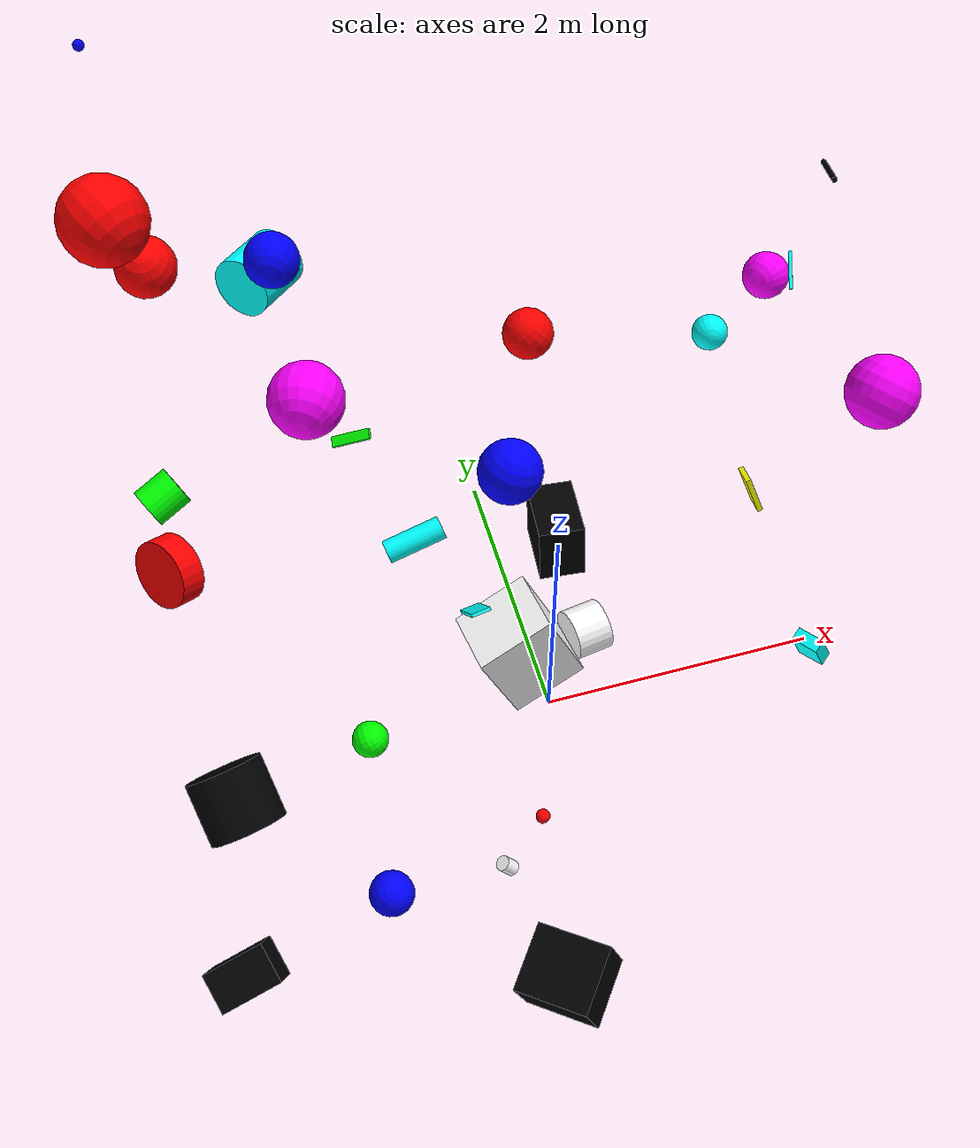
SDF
<sdf version="1.6">
 <world name="default">
  <include><uri>model://sun</uri></include>
  <model name="model_0">
   <allow_auto_disable>false</allow_auto_disable>
   <pose>0.8920310653777541
        -0.5840274105457106
        2.999799415194229
        2.2834429768708246
        2.089208011517773
        2.2327474561282576</pose>
   <link name="link">
    <inertial>
     <mass>0.004027552138453025</mass>
     <inertia>
      <ixx>7.91307599122789e-06</ixx>
      <iyy>1.6274618627189043e-05</iyy>
      <izz>2.361954240863773e-05</izz>
      <ixy>0.0</ixy>
      <ixz>0.0</ixz>
      <iyz>0.0</iyz>
     </inertia>
    </inertial>
    <collision name="collision">
     <geometry>
      <box><size>0.2182738137766651
            0.15076614891604018
            0.029092925152408668</size></box>
     </geometry>
     <surface>
      <bounce><restitution_coefficient>0</restitution_coefficient><threshold>5.0</threshold></bounce>
      <friction><ode><mu>1</mu></ode></friction>
     </surface>
    </collision>
    <visual name="visual">
     <geometry>
      <box><size>0.2182738137766651
            0.15076614891604018
            0.029092925152408668</size></box>
     </geometry>
     <material>
      <diffuse>1
              1
              0
              1</diffuse>
      <specular>1
              1
              1
              1</specular>
      <ambient>1
              0
              1
              1</ambient>
     </material>
    </visual>
   </link>
  </model>
  <model name="model_1">
   <allow_auto_disable>false</allow_auto_disable>
   <pose>-1.4550518862354467
        0.19147969491655248
        4.647626445242163
        1.3393376729164888
        1.4807817211829017
        2.553008919077728</pose>
   <link name="link">
    <inertial>
     <mass>0.02235544841956601</mass>
     <inertia>
      <ixx>0.0001604633614619541</ixx>
      <iyy>0.0001604633614619541</iyy>
      <izz>0.0001604633614619541</izz>
      <ixy>0.0</ixy>
      <ixz>0.0</ixz>
      <iyz>0.0</iyz>
     </inertia>
    </inertial>
    <collision name="collision">
     <geometry><sphere><radius>0.13395725957528468</radius></sphere></geometry>
     <surface>
      <bounce><restitution_coefficient>1</restitution_coefficient><threshold>5.0</threshold></bounce>
      <friction><ode><mu>6</mu></ode></friction>
     </surface>
    </collision>
    <visual name="visual">
     <geometry><sphere><radius>0.13395725957528468</radius></sphere></geometry>
     <material>
      <diffuse>0
              0
              1
              1</diffuse>
      <specular>1
              0
              0
              1</specular>
      <ambient>1
              0
              0
              1</ambient>
     </material>
    </visual>
   </link>
  </model>
  <model name="model_2">
   <allow_auto_disable>false</allow_auto_disable>
   <pose>-2.321813984611494
        0.06412139208453116
        2.5719793481291986
        1.1822359592798461
        2.8901904015267625
        2.0304544783209963</pose>
   <link name="link">
    <inertial>
     <mass>0.004429249819763144</mass>
     <inertia>
      <ixx>5.471176677279458e-05</ixx>
      <iyy>5.471176677279458e-05</iyy>
      <izz>9.242744719670705e-05</izz>
      <ixy>0.0</ixy>
      <ixz>0.0</ixz>
      <iyz>0.0</iyz>
     </inertia>
    </inertial>
    <collision name="collision">
     <geometry>
      <cylinder><radius>0.20429154309584932</radius><length>0.1517347318581171</length></cylinder>
     </geometry>
     <surface>
      <bounce><restitution_coefficient>1</restitution_coefficient><threshold>5.0</threshold></bounce>
      <friction><ode><mu>0</mu></ode></friction>
     </surface>
    </collision>
    <visual name="visual">
     <geometry>
      <cylinder><radius>0.20429154309584932</radius><length>0.1517347318581171</length></cylinder>
     </geometry>
     <material>
      <diffuse>1
              0
              0
              1</diffuse>
      <specular>0
              0
              0
              1</specular>
      <ambient>0
              0
              1
              1</ambient>
     </material>
    </visual>
   </link>
  </model>
  <model name="model_3">
   <allow_auto_disable>false</allow_auto_disable>
   <pose>-0.8551795804087954
        0.28181285327629
        2.0112790917625083
        2.1664095225270628
        1.9555788002384369
        2.235919422316196</pose>
   <link name="link">
    <inertial>
     <mass>0.018297608594807734</mass>
     <inertia>
      <ixx>0.0002387589444305875</ixx>
      <iyy>0.0002387589444305875</iyy>
      <izz>5.0763761305064496e-05</izz>
      <ixy>0.0</ixy>
      <ixz>0.0</ixz>
      <iyz>0.0</iyz>
     </inertia>
    </inertial>
    <collision name="collision">
     <geometry>
      <cylinder><radius>0.07448944317526346</radius><length>0.3740824412376236</length></cylinder>
     </geometry>
     <surface>
      <bounce><restitution_coefficient>0</restitution_coefficient><threshold>5.0</threshold></bounce>
      <friction><ode><mu>2</mu></ode></friction>
     </surface>
    </collision>
    <visual name="visual">
     <geometry>
      <cylinder><radius>0.07448944317526346</radius><length>0.3740824412376236</length></cylinder>
     </geometry>
     <material>
      <diffuse>0
              1
              1
              1</diffuse>
      <specular>0
              1
              0
              1</specular>
      <ambient>1
              0
              1
              1</ambient>
     </material>
    </visual>
   </link>
  </model>
  <model name="model_4">
   <allow_auto_disable>false</allow_auto_disable>
   <pose>-0.6793770007070714
        -2.423535450182006
        1.3913462665674114
        2.334858049163322
        1.2801658464876695
        0.08253686424867986</pose>
   <link name="link">
    <inertial>
     <mass>0.15040445230605445</mass>
     <inertia>
      <ixx>0.004506096678947164</ixx>
      <iyy>0.003239659933740621</iyy>
      <izz>0.0037209538760194596</izz>
      <ixy>0.0</ixy>
      <ixz>0.0</ixz>
      <iyz>0.0</iyz>
     </inertia>
    </inertial>
    <collision name="collision">
     <geometry>
      <box><size>0.3129163909929085
            0.4460483847868822
            0.4006983727361439</size></box>
     </geometry>
     <surface>
      <bounce><restitution_coefficient>0</restitution_coefficient><threshold>5.0</threshold></bounce>
      <friction><ode><mu>1</mu></ode></friction>
     </surface>
    </collision>
    <visual name="visual">
     <geometry>
      <box><size>0.3129163909929085
            0.4460483847868822
            0.4006983727361439</size></box>
     </geometry>
     <material>
      <diffuse>0
              0
              0
              1</diffuse>
      <specular>0
              1
              0
              1</specular>
      <ambient>1
              1
              0
              1</ambient>
     </material>
    </visual>
   </link>
  </model>
  <model name="model_5">
   <allow_auto_disable>false</allow_auto_disable>
   <pose>1.7395183741383233
        -0.4479138035040213
        0.7096047185828397
        2.8535891976373375
        1.1595156117539311
        0.34361685544288617</pose>
   <link name="link">
    <inertial>
     <mass>0.020352273797148757</mass>
     <inertia>
      <ixx>7.541166650226093e-05</ixx>
      <iyy>0.00019693473581305752</iyy>
      <izz>0.00024273790379311758</izz>
      <ixy>0.0</ixy>
      <ixz>0.0</ixz>
      <iyz>0.0</iyz>
     </inertia>
    </inertial>
    <collision name="collision">
     <geometry>
      <box><size>0.3276992735671293
            0.1890370987466162
            0.09342806390790545</size></box>
     </geometry>
     <surface>
      <bounce><restitution_coefficient>1</restitution_coefficient><threshold>5.0</threshold></bounce>
      <friction><ode><mu>5</mu></ode></friction>
     </surface>
    </collision>
    <visual name="visual">
     <geometry>
      <box><size>0.3276992735671293
            0.1890370987466162
            0.09342806390790545</size></box>
     </geometry>
     <material>
      <diffuse>0
              1
              1
              1</diffuse>
      <specular>1
              0
              1
              1</specular>
      <ambient>0
              0
              1
              1</ambient>
     </material>
    </visual>
   </link>
  </model>
  <model name="model_6">
   <allow_auto_disable>false</allow_auto_disable>
   <pose>-1.543818250233671
        -1.9314657371016586
        2.003802709388442
        1.3886574025692782
        2.8094082988189504
        0.20126288932390204</pose>
   <link name="link">
    <inertial>
     <mass>0.03153846903263536</mass>
     <inertia>
      <ixx>0.00019506345332151554</ixx>
      <iyy>0.00019506345332151554</iyy>
      <izz>0.00019506345332151554</izz>
      <ixy>0.0</ixy>
      <ixz>0.0</ixz>
      <iyz>0.0</iyz>
     </inertia>
    </inertial>
    <collision name="collision">
     <geometry><sphere><radius>0.12434767080837533</radius></sphere></geometry>
     <surface>
      <bounce><restitution_coefficient>1</restitution_coefficient><threshold>5.0</threshold></bounce>
      <friction><ode><mu>2</mu></ode></friction>
     </surface>
    </collision>
    <visual name="visual">
     <geometry><sphere><radius>0.12434767080837533</radius></sphere></geometry>
     <material>
      <diffuse>0
              0
              1
              1</diffuse>
      <specular>1
              0
              1
              1</specular>
      <ambient>1
              0
              0
              1</ambient>
     </material>
    </visual>
   </link>
  </model>
  <model name="model_7">
   <allow_auto_disable>false</allow_auto_disable>
   <pose>-0.22888135532593878
        0.3101550303235183
        2.44347427267747
        3.0619374439771843
        2.7613169461458247
        3.119631570468297</pose>
   <link name="link">
    <inertial>
     <mass>0.14824222021595315</mass>
     <inertia>
      <ixx>0.002482748350005478</ixx>
      <iyy>0.002482748350005478</iyy>
      <izz>0.002482748350005478</izz>
      <ixy>0.0</ixy>
      <ixz>0.0</ixz>
      <iyz>0.0</iyz>
     </inertia>
    </inertial>
    <collision name="collision">
     <geometry><sphere><radius>0.20462109289038377</radius></sphere></geometry>
     <surface>
      <bounce><restitution_coefficient>0</restitution_coefficient><threshold>5.0</threshold></bounce>
      <friction><ode><mu>4</mu></ode></friction>
     </surface>
    </collision>
    <visual name="visual">
     <geometry><sphere><radius>0.20462109289038377</radius></sphere></geometry>
     <material>
      <diffuse>0
              0
              1
              1</diffuse>
      <specular>0
              1
              1
              1</specular>
      <ambient>0
              1
              1
              1</ambient>
     </material>
    </visual>
   </link>
  </model>
  <model name="model_8">
   <allow_auto_disable>false</allow_auto_disable>
   <pose>-1.4076786203638885
        -0.7094899182148047
        1.46186591397618
        1.9541073474225323
        2.6286066232967347
        1.8000648310968785</pose>
   <link name="link">
    <inertial>
     <mass>0.022776920652062906</mass>
     <inertia>
      <ixx>0.00011710494803965085</ixx>
      <iyy>0.00011710494803965085</iyy>
      <izz>0.00011710494803965085</izz>
      <ixy>0.0</ixy>
      <ixz>0.0</ixz>
      <iyz>0.0</iyz>
     </inertia>
    </inertial>
    <collision name="collision">
     <geometry><sphere><radius>0.11337312634247138</radius></sphere></geometry>
     <surface>
      <bounce><restitution_coefficient>0</restitution_coefficient><threshold>5.0</threshold></bounce>
      <friction><ode><mu>6</mu></ode></friction>
     </surface>
    </collision>
    <visual name="visual">
     <geometry><sphere><radius>0.11337312634247138</radius></sphere></geometry>
     <material>
      <diffuse>0
              1
              0
              1</diffuse>
      <specular>1
              0
              0
              1</specular>
      <ambient>1
              0
              0
              1</ambient>
     </material>
    </visual>
   </link>
  </model>
  <model name="model_9">
   <allow_auto_disable>false</allow_auto_disable>
   <pose>-1.0138196329741072
        1.4599385708335855
        1.6663356183286178
        2.3570043694081746
        0.9577596911654545
        0.5435853749301669</pose>
   <link name="link">
    <inertial>
     <mass>0.0013653885531155873</mass>
     <inertia>
      <ixx>9.921493120233378e-06</ixx>
      <iyy>7.013673402992825e-07</iyy>
      <izz>9.410761973805183e-06</izz>
      <ixy>0.0</ixy>
      <ixz>0.0</ixz>
      <iyz>0.0</iyz>
     </inertia>
    </inertial>
    <collision name="collision">
     <geometry>
      <box><size>0.028943441922784023
            0.2861305772819794
            0.07298211600505056</size></box>
     </geometry>
     <surface>
      <bounce><restitution_coefficient>1</restitution_coefficient><threshold>5.0</threshold></bounce>
      <friction><ode><mu>4</mu></ode></friction>
     </surface>
    </collision>
    <visual name="visual">
     <geometry>
      <box><size>0.028943441922784023
            0.2861305772819794
            0.07298211600505056</size></box>
     </geometry>
     <material>
      <diffuse>0
              1
              0
              1</diffuse>
      <specular>0
              0
              0
              1</specular>
      <ambient>1
              0
              1
              1</ambient>
     </material>
    </visual>
   </link>
  </model>
  <model name="model_10">
   <allow_auto_disable>false</allow_auto_disable>
   <pose>-2.061300452802
        1.533513494969986
        3.4894158905898323
        2.8025912604094967
        2.9748776717433687
        0.2447096147222474</pose>
   <link name="link">
    <inertial>
     <mass>0.047267222626967156</mass>
     <inertia>
      <ixx>0.0006256071080471597</ixx>
      <iyy>0.0006256071080471597</iyy>
      <izz>0.0006256071080471597</izz>
      <ixy>0.0</ixy>
      <ixz>0.0</ixz>
      <iyz>0.0</iyz>
     </inertia>
    </inertial>
    <collision name="collision">
     <geometry><sphere><radius>0.18190339277362183</radius></sphere></geometry>
     <surface>
      <bounce><restitution_coefficient>1</restitution_coefficient><threshold>5.0</threshold></bounce>
      <friction><ode><mu>3</mu></ode></friction>
     </surface>
    </collision>
    <visual name="visual">
     <geometry><sphere><radius>0.18190339277362183</radius></sphere></geometry>
     <material>
      <diffuse>1
              0
              0
              1</diffuse>
      <specular>1
              1
              1
              1</specular>
      <ambient>0
              0
              0
              1</ambient>
     </material>
    </visual>
   </link>
  </model>
  <model name="model_11">
   <allow_auto_disable>false</allow_auto_disable>
   <pose>-2.4475286977331363
        -1.746590416406773
        0.9158721870594841
        0.9277244318294108
        1.0162327227102999
        1.1371950934424782</pose>
   <link name="link">
    <inertial>
     <mass>0.0035943632969979112</mass>
     <inertia>
      <ixx>6.755216638519933e-05</ixx>
      <iyy>6.50267293381958e-05</iyy>
      <izz>3.723383922051798e-05</izz>
      <ixy>0.0</ixy>
      <ixz>0.0</ixz>
      <iyz>0.0</iyz>
     </inertia>
    </inertial>
    <collision name="collision">
     <geometry>
      <box><size>0.24070324782075195
            0.2576225501686051
            0.3989456462911302</size></box>
     </geometry>
     <surface>
      <bounce><restitution_coefficient>0</restitution_coefficient><threshold>5.0</threshold></bounce>
      <friction><ode><mu>3</mu></ode></friction>
     </surface>
    </collision>
    <visual name="visual">
     <geometry>
      <box><size>0.24070324782075195
            0.2576225501686051
            0.3989456462911302</size></box>
     </geometry>
     <material>
      <diffuse>0
              0
              0
              1</diffuse>
      <specular>1
              1
              1
              1</specular>
      <ambient>1
              1
              0
              1</ambient>
     </material>
    </visual>
   </link>
  </model>
  <model name="model_12">
   <allow_auto_disable>false</allow_auto_disable>
   <pose>-1.371785884198082
        2.3253499760661507
        2.4967541285133428
        1.0310458847587103
        1.908252904372444
        1.850788640180911</pose>
   <link name="link">
    <inertial>
     <mass>0.06389835275143155</mass>
     <inertia>
      <ixx>0.0016049116814112194</ixx>
      <iyy>0.0016049116814112194</iyy>
      <izz>0.0013412719192793846</izz>
      <ixy>0.0</ixy>
      <ixz>0.0</ixz>
      <iyz>0.0</iyz>
     </inertia>
    </inertial>
    <collision name="collision">
     <geometry>
      <cylinder><radius>0.20489368946165734</radius><length>0.4188739222630243</length></cylinder>
     </geometry>
     <surface>
      <bounce><restitution_coefficient>1</restitution_coefficient><threshold>5.0</threshold></bounce>
      <friction><ode><mu>10</mu></ode></friction>
     </surface>
    </collision>
    <visual name="visual">
     <geometry>
      <cylinder><radius>0.20489368946165734</radius><length>0.4188739222630243</length></cylinder>
     </geometry>
     <material>
      <diffuse>0
              1
              1
              1</diffuse>
      <specular>0
              1
              1
              1</specular>
      <ambient>0
              0
              0
              1</ambient>
     </material>
    </visual>
   </link>
  </model>
  <model name="model_13">
   <allow_auto_disable>false</allow_auto_disable>
   <pose>-0.119864323822374
        -0.8346944209319567
        2.3640245433703315
        1.634688059082988
        1.119663054574946
        1.7981600035336327</pose>
   <link name="link">
    <inertial>
     <mass>0.005259095311067274</mass>
     <inertia>
      <ixx>4.5836758366210907e-05</ixx>
      <iyy>4.5836758366210907e-05</iyy>
      <izz>5.446652965858076e-05</izz>
      <ixy>0.0</ixy>
      <ixz>0.0</ixz>
      <iyz>0.0</iyz>
     </inertia>
    </inertial>
    <collision name="collision">
     <geometry>
      <cylinder><radius>0.14392105354866835</radius><length>0.20603089829750607</length></cylinder>
     </geometry>
     <surface>
      <bounce><restitution_coefficient>0</restitution_coefficient><threshold>5.0</threshold></bounce>
      <friction><ode><mu>8</mu></ode></friction>
     </surface>
    </collision>
    <visual name="visual">
     <geometry>
      <cylinder><radius>0.14392105354866835</radius><length>0.20603089829750607</length></cylinder>
     </geometry>
     <material>
      <diffuse>1
              1
              1
              1</diffuse>
      <specular>0
              0
              1
              1</specular>
      <ambient>0
              1
              1
              1</ambient>
     </material>
    </visual>
   </link>
  </model>
  <model name="model_14">
   <allow_auto_disable>false</allow_auto_disable>
   <pose>-0.843495962842663
        -1.7610301545318978
        1.5397468158346137
        0.11093695976327687
        0.6161249479679323
        3.120606055948439</pose>
   <link name="link">
    <inertial>
     <mass>0.002561326019500624</mass>
     <inertia>
      <ixx>3.3829461471306947e-06</ixx>
      <iyy>3.3829461471306947e-06</iyy>
      <izz>2.572040616661814e-06</izz>
      <ixy>0.0</ixy>
      <ixz>0.0</ixz>
      <iyz>0.0</iyz>
     </inertia>
    </inertial>
    <collision name="collision">
     <geometry>
      <cylinder><radius>0.044814801633067364</radius><length>0.09911736043426529</length></cylinder>
     </geometry>
     <surface>
      <bounce><restitution_coefficient>1</restitution_coefficient><threshold>5.0</threshold></bounce>
      <friction><ode><mu>1</mu></ode></friction>
     </surface>
    </collision>
    <visual name="visual">
     <geometry>
      <cylinder><radius>0.044814801633067364</radius><length>0.09911736043426529</length></cylinder>
     </geometry>
     <material>
      <diffuse>1
              1
              1
              1</diffuse>
      <specular>1
              0
              0
              1</specular>
      <ambient>0
              0
              0
              1</ambient>
     </material>
    </visual>
   </link>
  </model>
  <model name="model_15">
   <allow_auto_disable>false</allow_auto_disable>
   <pose>-2.197895504225615
        1.0469584522884463
        4.315016191852941
        2.266230373435788
        0.9717590614280394
        1.1157087803322423</pose>
   <link name="link">
    <inertial>
     <mass>0.11008794156003399</mass>
     <inertia>
      <ixx>0.0025622519967075483</ixx>
      <iyy>0.0025622519967075483</iyy>
      <izz>0.0025622519967075483</izz>
      <ixy>0.0</ixy>
      <ixz>0.0</ixz>
      <iyz>0.0</iyz>
     </inertia>
    </inertial>
    <collision name="collision">
     <geometry><sphere><radius>0.24121874233301646</radius></sphere></geometry>
     <surface>
      <bounce><restitution_coefficient>0</restitution_coefficient><threshold>5.0</threshold></bounce>
      <friction><ode><mu>7</mu></ode></friction>
     </surface>
    </collision>
    <visual name="visual">
     <geometry><sphere><radius>0.24121874233301646</radius></sphere></geometry>
     <material>
      <diffuse>1
              0
              0
              1</diffuse>
      <specular>1
              0
              0
              1</specular>
      <ambient>0
              1
              0
              1</ambient>
     </material>
    </visual>
   </link>
  </model>
  <model name="model_16">
   <allow_auto_disable>false</allow_auto_disable>
   <pose>-2.179832364932219
        -1.918300618376008
        3.5045105281329922
        2.1415200296226917
        0.12309972839318821
        0.29158560935866856</pose>
   <link name="link">
    <inertial>
     <mass>0.036430031083794764</mass>
     <inertia>
      <ixx>0.0005689067535083712</ixx>
      <iyy>0.0005689067535083712</iyy>
      <izz>0.0005999954450754908</izz>
      <ixy>0.0</ixy>
      <ixz>0.0</ixz>
      <iyz>0.0</iyz>
     </inertia>
    </inertial>
    <collision name="collision">
     <geometry>
      <cylinder><radius>0.1814927175957669</radius><length>0.297620982456624</length></cylinder>
     </geometry>
     <surface>
      <bounce><restitution_coefficient>1</restitution_coefficient><threshold>5.0</threshold></bounce>
      <friction><ode><mu>0</mu></ode></friction>
     </surface>
    </collision>
    <visual name="visual">
     <geometry>
      <cylinder><radius>0.1814927175957669</radius><length>0.297620982456624</length></cylinder>
     </geometry>
     <material>
      <diffuse>0
              0
              0
              1</diffuse>
      <specular>0
              1
              1
              1</specular>
      <ambient>1
              1
              1
              1</ambient>
     </material>
    </visual>
   </link>
  </model>
  <model name="model_17">
   <allow_auto_disable>false</allow_auto_disable>
   <pose>-0.8287936306638195
        -2.247402011084245
        3.2131075449576443
        1.5573536181094303
        0.7398943258820495
        1.5095687804359665</pose>
   <link name="link">
    <inertial>
     <mass>0.0002930314098778816</mass>
     <inertia>
      <ixx>1.3372589474817512e-07</ixx>
      <iyy>1.3372589474817512e-07</iyy>
      <izz>1.3372589474817512e-07</izz>
      <ixy>0.0</ixy>
      <ixz>0.0</ixz>
      <iyz>0.0</iyz>
     </inertia>
    </inertial>
    <collision name="collision">
     <geometry><sphere><radius>0.03377696884089714</radius></sphere></geometry>
     <surface>
      <bounce><restitution_coefficient>1</restitution_coefficient><threshold>5.0</threshold></bounce>
      <friction><ode><mu>3</mu></ode></friction>
     </surface>
    </collision>
    <visual name="visual">
     <geometry><sphere><radius>0.03377696884089714</radius></sphere></geometry>
     <material>
      <diffuse>1
              0
              0
              1</diffuse>
      <specular>1
              1
              1
              1</specular>
      <ambient>1
              0
              0
              1</ambient>
     </material>
    </visual>
   </link>
  </model>
  <model name="model_18">
   <allow_auto_disable>false</allow_auto_disable>
   <pose>-2.1108391606340553
        1.6452661544005922
        4.922977091952634
        2.1646862364331985
        3.11500756732537
        0.391331845599796</pose>
   <link name="link">
    <inertial>
     <mass>0.00022374179150245511</mass>
     <inertia>
      <ixx>7.669057437817619e-08</ixx>
      <iyy>7.669057437817619e-08</iyy>
      <izz>7.669057437817619e-08</izz>
      <ixy>0.0</ixy>
      <ixz>0.0</ixz>
      <iyz>0.0</iyz>
     </inertia>
    </inertial>
    <collision name="collision">
     <geometry><sphere><radius>0.029273014238532714</radius></sphere></geometry>
     <surface>
      <bounce><restitution_coefficient>1</restitution_coefficient><threshold>5.0</threshold></bounce>
      <friction><ode><mu>3</mu></ode></friction>
     </surface>
    </collision>
    <visual name="visual">
     <geometry><sphere><radius>0.029273014238532714</radius></sphere></geometry>
     <material>
      <diffuse>0
              0
              1
              1</diffuse>
      <specular>0
              1
              1
              1</specular>
      <ambient>1
              0
              0
              1</ambient>
     </material>
    </visual>
   </link>
  </model>
  <model name="model_19">
   <allow_auto_disable>false</allow_auto_disable>
   <pose>0.23428340419762206
        1.4714875867102628
        2.31817330146942
        0.122741893367447
        2.5332227519072643
        0.039469913154495266</pose>
   <link name="link">
    <inertial>
     <mass>0.027007113015593845</mass>
     <inertia>
      <ixx>0.0003177470491506494</ixx>
      <iyy>0.0003177470491506494</iyy>
      <izz>0.0003177470491506494</izz>
      <ixy>0.0</ixy>
      <ixz>0.0</ixz>
      <iyz>0.0</iyz>
     </inertia>
    </inertial>
    <collision name="collision">
     <geometry><sphere><radius>0.17150298623876095</radius></sphere></geometry>
     <surface>
      <bounce><restitution_coefficient>1</restitution_coefficient><threshold>5.0</threshold></bounce>
      <friction><ode><mu>8</mu></ode></friction>
     </surface>
    </collision>
    <visual name="visual">
     <geometry><sphere><radius>0.17150298623876095</radius></sphere></geometry>
     <material>
      <diffuse>1
              0
              0
              1</diffuse>
      <specular>0
              1
              0
              1</specular>
      <ambient>1
              0
              0
              1</ambient>
     </material>
    </visual>
   </link>
  </model>
  <model name="model_20">
   <allow_auto_disable>false</allow_auto_disable>
   <pose>2.1683562435649115
        1.436961257743567
        3.2639300552799972
        2.726638894574136
        2.1146183290676
        0.7555771039092325</pose>
   <link name="link">
    <inertial>
     <mass>0.0015927337881502662</mass>
     <inertia>
      <ixx>3.162753596906174e-05</ixx>
      <iyy>3.162753596906174e-05</iyy>
      <izz>2.2337258024523542e-07</izz>
      <ixy>0.0</ixy>
      <ixz>0.0</ixz>
      <iyz>0.0</iyz>
     </inertia>
    </inertial>
    <collision name="collision">
     <geometry>
      <cylinder><radius>0.01674782181504133</radius><length>0.4872855540432802</length></cylinder>
     </geometry>
     <surface>
      <bounce><restitution_coefficient>0</restitution_coefficient><threshold>5.0</threshold></bounce>
      <friction><ode><mu>0</mu></ode></friction>
     </surface>
    </collision>
    <visual name="visual">
     <geometry>
      <cylinder><radius>0.01674782181504133</radius><length>0.4872855540432802</length></cylinder>
     </geometry>
     <material>
      <diffuse>0
              0
              0
              1</diffuse>
      <specular>0
              1
              0
              1</specular>
      <ambient>0
              1
              0
              1</ambient>
     </material>
    </visual>
   </link>
  </model>
  <model name="model_21">
   <allow_auto_disable>false</allow_auto_disable>
   <pose>-0.6884945583989988
        -1.3899915659341233
        3.339203785148019
        1.1938841770558122
        0.15905949680905504
        1.6816258487025084</pose>
   <link name="link">
    <inertial>
     <mass>0.2956646839323575</mass>
     <inertia>
      <ixx>0.008814003934143265</ixx>
      <iyy>0.0065636514034796084</iyy>
      <izz>0.007883514242943458</izz>
      <ixy>0.0</ixy>
      <ixz>0.0</ixz>
      <iyz>0.0</iyz>
     </inertia>
    </inertial>
    <collision name="collision">
     <geometry>
      <box><size>0.33810532302832824
            0.4534855927452468
            0.3899750581886236</size></box>
     </geometry>
     <surface>
      <bounce><restitution_coefficient>1</restitution_coefficient><threshold>5.0</threshold></bounce>
      <friction><ode><mu>7</mu></ode></friction>
     </surface>
    </collision>
    <visual name="visual">
     <geometry>
      <box><size>0.33810532302832824
            0.4534855927452468
            0.3899750581886236</size></box>
     </geometry>
     <material>
      <diffuse>1
              1
              1
              1</diffuse>
      <specular>1
              1
              1
              1</specular>
      <ambient>1
              1
              0
              1</ambient>
     </material>
    </visual>
   </link>
  </model>
  <model name="model_22">
   <allow_auto_disable>false</allow_auto_disable>
   <pose>-2.388553807005062
        2.2309584361913926
        0.5093873888895137
        0.3600720688334756
        1.2760663443253377
        0.7705257643283118</pose>
   <link name="link">
    <inertial>
     <mass>0.06827815980770524</mass>
     <inertia>
      <ixx>0.0008847590835981262</ixx>
      <iyy>0.0008847590835981262</iyy>
      <izz>0.0008504758621334319</izz>
      <ixy>0.0</ixy>
      <ixz>0.0</ixz>
      <iyz>0.0</iyz>
     </inertia>
    </inertial>
    <collision name="collision">
     <geometry>
      <cylinder><radius>0.15783564524389834</radius><length>0.28418586496766207</length></cylinder>
     </geometry>
     <surface>
      <bounce><restitution_coefficient>1</restitution_coefficient><threshold>5.0</threshold></bounce>
      <friction><ode><mu>7</mu></ode></friction>
     </surface>
    </collision>
    <visual name="visual">
     <geometry>
      <cylinder><radius>0.15783564524389834</radius><length>0.28418586496766207</length></cylinder>
     </geometry>
     <material>
      <diffuse>0
              1
              0
              1</diffuse>
      <specular>1
              1
              1
              1</specular>
      <ambient>1
              1
              0
              1</ambient>
     </material>
    </visual>
   </link>
  </model>
  <model name="model_23">
   <allow_auto_disable>false</allow_auto_disable>
   <pose>1.2825239515812088
        0.40835128265305043
        3.5883771359813323
        1.3647778984733956
        3.016958778693333
        2.096303393590653</pose>
   <link name="link">
    <inertial>
     <mass>0.04112428255440616</mass>
     <inertia>
      <ixx>0.0002860482740847313</ixx>
      <iyy>0.0002860482740847313</iyy>
      <izz>0.0002860482740847313</izz>
      <ixy>0.0</ixy>
      <ixz>0.0</ixz>
      <iyz>0.0</iyz>
     </inertia>
    </inertial>
    <collision name="collision">
     <geometry><sphere><radius>0.13186832901010198</radius></sphere></geometry>
     <surface>
      <bounce><restitution_coefficient>0</restitution_coefficient><threshold>5.0</threshold></bounce>
      <friction><ode><mu>4</mu></ode></friction>
     </surface>
    </collision>
    <visual name="visual">
     <geometry><sphere><radius>0.13186832901010198</radius></sphere></geometry>
     <material>
      <diffuse>1
              0
              1
              1</diffuse>
      <specular>1
              0
              1
              1</specular>
      <ambient>0
              1
              0
              1</ambient>
     </material>
    </visual>
   </link>
  </model>
  <model name="model_24">
   <allow_auto_disable>false</allow_auto_disable>
   <pose>-1.481429503514386
        -0.7221900293057137
        4.682345568918195
        1.6385780755460815
        2.8295989244639754
        2.7524670867487586</pose>
   <link name="link">
    <inertial>
     <mass>0.005284106873689819</mass>
     <inertia>
      <ixx>6.337366138941905e-05</ixx>
      <iyy>6.337366138941905e-05</iyy>
      <izz>6.337366138941905e-05</izz>
      <ixy>0.0</ixy>
      <ixz>0.0</ixz>
      <iyz>0.0</iyz>
     </inertia>
    </inertial>
    <collision name="collision">
     <geometry><sphere><radius>0.1731564236746679</radius></sphere></geometry>
     <surface>
      <bounce><restitution_coefficient>0</restitution_coefficient><threshold>5.0</threshold></bounce>
      <friction><ode><mu>9</mu></ode></friction>
     </surface>
    </collision>
    <visual name="visual">
     <geometry><sphere><radius>0.1731564236746679</radius></sphere></geometry>
     <material>
      <diffuse>1
              0
              1
              1</diffuse>
      <specular>1
              1
              1
              1</specular>
      <ambient>0
              0
              0
              1</ambient>
     </material>
    </visual>
   </link>
  </model>
  <model name="model_25">
   <allow_auto_disable>false</allow_auto_disable>
   <pose>0.3186550302161373
        0.9492537814591602
        0.7665186431947273
        0.12095218312965636
        1.7209455934606674
        1.5813462395519815</pose>
   <link name="link">
    <inertial>
     <mass>0.24804437869113735</mass>
     <inertia>
      <ixx>0.00736000215091289</ixx>
      <iyy>0.00930148660291595</iyy>
      <izz>0.0064129774971381686</izz>
      <ixy>0.0</ixy>
      <ixz>0.0</ixz>
      <iyz>0.0</iyz>
     </inertia>
    </inertial>
    <collision name="collision">
     <geometry>
      <box><size>0.4495418962929383
            0.3288798080901068
            0.4978990776885869</size></box>
     </geometry>
     <surface>
      <bounce><restitution_coefficient>1</restitution_coefficient><threshold>5.0</threshold></bounce>
      <friction><ode><mu>8</mu></ode></friction>
     </surface>
    </collision>
    <visual name="visual">
     <geometry>
      <box><size>0.4495418962929383
            0.3288798080901068
            0.4978990776885869</size></box>
     </geometry>
     <material>
      <diffuse>0
              0
              0
              1</diffuse>
      <specular>0
              1
              1
              1</specular>
      <ambient>1
              0
              0
              1</ambient>
     </material>
    </visual>
   </link>
  </model>
  <model name="model_26">
   <allow_auto_disable>false</allow_auto_disable>
   <pose>1.2800245008534943
        0.15646900982237177
        3.867584718092254
        0.21823029344048558
        1.2335046864729964
        1.4908319062340545</pose>
   <link name="link">
    <inertial>
     <mass>5.066409646070719e-05</mass>
     <inertia>
      <ixx>2.0615825676416127e-07</ixx>
      <iyy>2.0615825676416127e-07</iyy>
      <izz>2.3735163443187357e-09</izz>
      <ixy>0.0</ixy>
      <ixz>0.0</ixz>
      <iyz>0.0</iyz>
     </inertia>
    </inertial>
    <collision name="collision">
     <geometry>
      <cylinder><radius>0.00967967910836244</radius><length>0.22033688750114525</length></cylinder>
     </geometry>
     <surface>
      <bounce><restitution_coefficient>0</restitution_coefficient><threshold>5.0</threshold></bounce>
      <friction><ode><mu>10</mu></ode></friction>
     </surface>
    </collision>
    <visual name="visual">
     <geometry>
      <cylinder><radius>0.00967967910836244</radius><length>0.22033688750114525</length></cylinder>
     </geometry>
     <material>
      <diffuse>0
              1
              1
              1</diffuse>
      <specular>1
              1
              1
              1</specular>
      <ambient>1
              0
              1
              1</ambient>
     </material>
    </visual>
   </link>
  </model>
  <model name="model_27">
   <allow_auto_disable>false</allow_auto_disable>
   <pose>0.8716119060887761
        0.17226437744636458
        3.487878924873719
        0.8628292120705674
        2.117273225355817
        2.2336320670357424</pose>
   <link name="link">
    <inertial>
     <mass>0.013723985712390013</mass>
     <inertia>
      <ixx>5.488421223704866e-05</ixx>
      <iyy>5.488421223704866e-05</iyy>
      <izz>5.488421223704866e-05</izz>
      <ixy>0.0</ixy>
      <ixz>0.0</ixz>
      <iyz>0.0</iyz>
     </inertia>
    </inertial>
    <collision name="collision">
     <geometry><sphere><radius>0.09998931502161851</radius></sphere></geometry>
     <surface>
      <bounce><restitution_coefficient>1</restitution_coefficient><threshold>5.0</threshold></bounce>
      <friction><ode><mu>0</mu></ode></friction>
     </surface>
    </collision>
    <visual name="visual">
     <geometry><sphere><radius>0.09998931502161851</radius></sphere></geometry>
     <material>
      <diffuse>0
              1
              1
              1</diffuse>
      <specular>0
              1
              0
              1</specular>
      <ambient>1
              0
              0
              1</ambient>
     </material>
    </visual>
   </link>
  </model>
  <model name="model_28">
   <allow_auto_disable>false</allow_auto_disable>
   <pose>1.5563137770449078
        -0.5676788274865963
        3.593876858674808
        2.73147186877849
        0.7757776976137193
        0.11276427946468771</pose>
   <link name="link">
    <inertial>
     <mass>0.010184593926245145</mass>
     <inertia>
      <ixx>0.00016388772373140902</ixx>
      <iyy>0.00016388772373140902</iyy>
      <izz>0.00016388772373140902</izz>
      <ixy>0.0</ixy>
      <ixz>0.0</ixz>
      <iyz>0.0</iyz>
     </inertia>
    </inertial>
    <collision name="collision">
     <geometry><sphere><radius>0.20057248585369633</radius></sphere></geometry>
     <surface>
      <bounce><restitution_coefficient>1</restitution_coefficient><threshold>5.0</threshold></bounce>
      <friction><ode><mu>1</mu></ode></friction>
     </surface>
    </collision>
    <visual name="visual">
     <geometry><sphere><radius>0.20057248585369633</radius></sphere></geometry>
     <material>
      <diffuse>1
              0
              1
              1</diffuse>
      <specular>0
              0
              0
              1</specular>
      <ambient>0
              1
              1
              1</ambient>
     </material>
    </visual>
   </link>
  </model>
  <model name="model_29">
   <allow_auto_disable>false</allow_auto_disable>
   <pose>-2.1794690430369985
        -1.272943555157962
        2.12750391885048
        2.961096593992787
        1.5467540916255766
        1.5907521757050063</pose>
   <link name="link">
    <inertial>
     <mass>0.010651575712013443</mass>
     <inertia>
      <ixx>4.713702793357314e-05</ixx>
      <iyy>4.713702793357314e-05</iyy>
      <izz>4.713702793357314e-05</izz>
      <ixy>0.0</ixy>
      <ixz>0.0</ixz>
      <iyz>0.0</iyz>
     </inertia>
    </inertial>
    <collision name="collision">
     <geometry><sphere><radius>0.10518266566358006</radius></sphere></geometry>
     <surface>
      <bounce><restitution_coefficient>1</restitution_coefficient><threshold>5.0</threshold></bounce>
      <friction><ode><mu>5</mu></ode></friction>
     </surface>
    </collision>
    <visual name="visual">
     <geometry><sphere><radius>0.10518266566358006</radius></sphere></geometry>
     <material>
      <diffuse>0
              1
              0
              1</diffuse>
      <specular>1
              0
              1
              1</specular>
      <ambient>1
              1
              1
              1</ambient>
     </material>
    </visual>
   </link>
  </model>
  <model name="model_30">
   <allow_auto_disable>false</allow_auto_disable>
   <pose>-0.99488076867478
        -1.702349270111247
        4.2524998156297436
        0.05176428764070528
        0.8129359378476197
        1.8002874009153516</pose>
   <link name="link">
    <inertial>
     <mass>0.0003901523790209939</mass>
     <inertia>
      <ixx>2.6298417460907036e-07</ixx>
      <iyy>7.592853543520481e-07</iyy>
      <izz>1.0083610815594643e-06</izz>
      <ixy>0.0</ixy>
      <ixz>0.0</ixz>
      <iyz>0.0</iyz>
     </inertia>
    </inertial>
    <collision name="collision">
     <geometry>
      <box><size>0.1521170903328777
            0.088739888719546
            0.01462506556405755</size></box>
     </geometry>
     <surface>
      <bounce><restitution_coefficient>1</restitution_coefficient><threshold>5.0</threshold></bounce>
      <friction><ode><mu>1</mu></ode></friction>
     </surface>
    </collision>
    <visual name="visual">
     <geometry>
      <box><size>0.1521170903328777
            0.088739888719546
            0.01462506556405755</size></box>
     </geometry>
     <material>
      <diffuse>0
              1
              1
              1</diffuse>
      <specular>0
              0
              0
              1</specular>
      <ambient>1
              1
              0
              1</ambient>
     </material>
    </visual>
   </link>
  </model>
  <scene><shadows>false</shadows><grid>false</grid><sky><clouds><speed>0</speed></clouds></sky></scene>
 </world>
</sdf>
